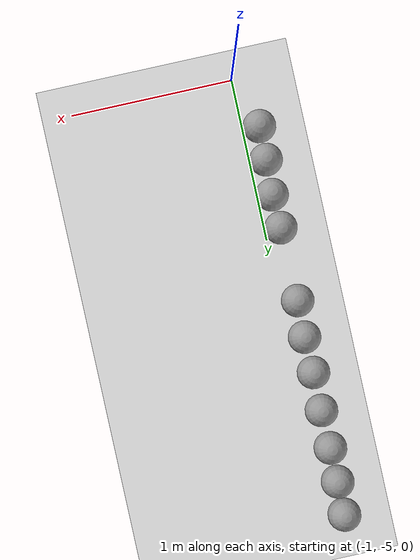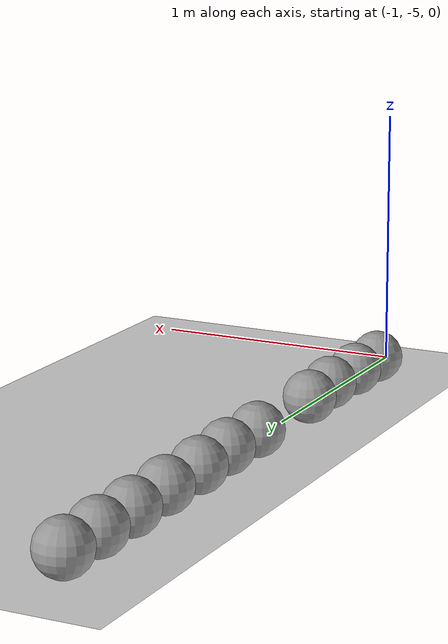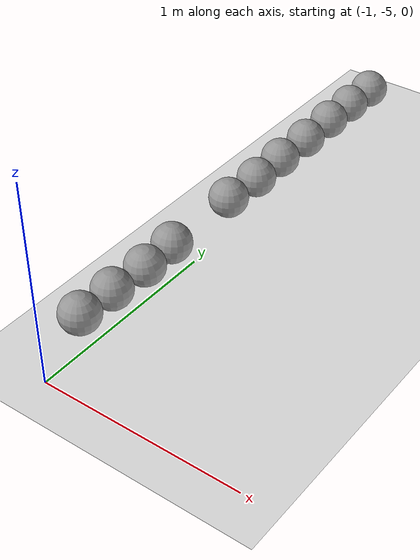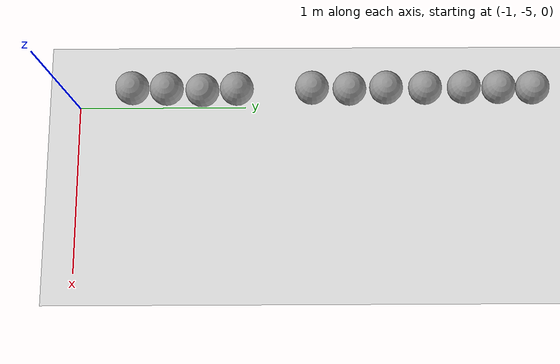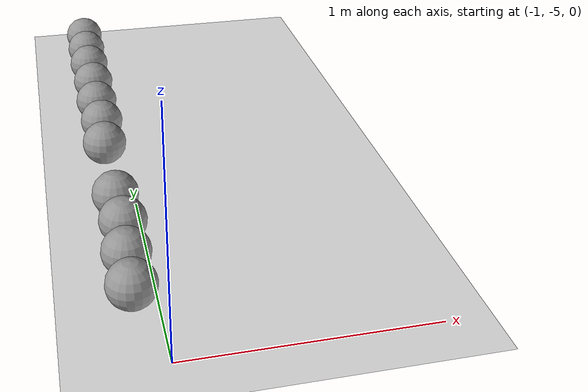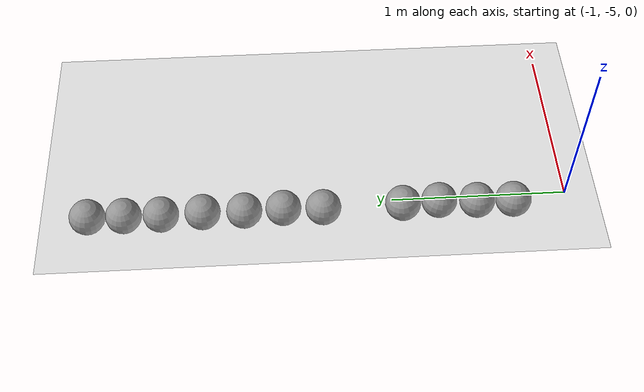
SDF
<sdf version="1.7">
 <world name="default">
  <model name="ground_plane">
   <static>1</static>
   <link name="link">
    <collision name="collision">
     <geometry><plane><normal>0 0 1</normal><size>100 100</size></plane></geometry>
     <surface>
      <contact><collide_bitmask>65535</collide_bitmask></contact>
      <friction><ode><mu>100</mu><mu2>50</mu2></ode></friction>
     </surface>
    </collision>
    <visual name="visual">
     <cast_shadows>0</cast_shadows>
     <geometry><plane><normal>0 0 1</normal><size>100 100</size></plane></geometry>
     <material>
      <script><uri>file://media/materials/scripts/gazebo.material</uri><name>Gazebo/White</name></script>
     </material>
    </visual>
   </link>
  </model>
  <model name="sphere_3">
   <link name="link_0">
    <inertial>
     <mass>1</mass>
     <inertia><ixx>0.1</ixx><ixy>0</ixy><ixz>0</ixz><iyy>0.1</iyy><iyz>0</iyz><izz>0.1</izz></inertia>
    </inertial>
    <visual name="visual">
     <geometry><sphere><radius>0.1</radius></sphere></geometry>
     <material>
      <lighting>1</lighting>
      <script><uri>file://media/materials/scripts/gazebo.material</uri><name>Gazebo/Grey</name></script>
      <shader type="pixel"><normal_map>__default__</normal_map></shader>
      <ambient>0.3 0.3 0.3 1</ambient>
      <diffuse>0.7 0.7 0.7 1</diffuse>
      <specular>0.01 0.01 0.01 1</specular>
      <emissive>0 0 0 1</emissive>
     </material>
    </visual>
    <collision name="collision">
     <geometry><sphere><radius>0.1</radius></sphere></geometry>
     <surface>
      <friction>
       <ode><mu>1</mu><mu2>1</mu2><fdir1>0 0 0</fdir1><slip1>0</slip1><slip2>0</slip2></ode>
       <torsional>
        <coefficient>1</coefficient>
        <patch_radius>0</patch_radius>
        <surface_radius>0</surface_radius>
        <use_patch_radius>1</use_patch_radius>
        <ode><slip>0</slip></ode>
       </torsional>
      </friction>
      <bounce><restitution_coefficient>0</restitution_coefficient><threshold>1e+06</threshold></bounce>
      <contact>
       <collide_without_contact>0</collide_without_contact>
       <collide_without_contact_bitmask>1</collide_without_contact_bitmask>
       <collide_bitmask>1</collide_bitmask>
       <ode>
        <soft_cfm>0</soft_cfm>
        <soft_erp>0.2</soft_erp>
        <kp>1e+13</kp>
        <kd>1</kd>
        <max_vel>0.01</max_vel>
        <min_depth>0</min_depth>
       </ode>
       <bullet>
        <split_impulse>1</split_impulse>
        <split_impulse_penetration_threshold>-0.01</split_impulse_penetration_threshold>
        <soft_cfm>0</soft_cfm>
        <soft_erp>0.2</soft_erp>
        <kp>1e+13</kp>
        <kd>1</kd>
       </bullet>
      </contact>
     </surface>
    </collision>
   </link>
   <static>0</static>
   <pose>-1.09593 -4.67195 0.1 0 -0 0</pose>
  </model>
  <model name="sphere_4">
   <link name="link_0">
    <inertial>
     <mass>1</mass>
     <inertia><ixx>0.1</ixx><ixy>0</ixy><ixz>0</ixz><iyy>0.1</iyy><iyz>0</iyz><izz>0.1</izz></inertia>
    </inertial>
    <visual name="visual">
     <geometry><sphere><radius>0.1</radius></sphere></geometry>
     <material>
      <lighting>1</lighting>
      <script><uri>file://media/materials/scripts/gazebo.material</uri><name>Gazebo/Grey</name></script>
      <shader type="pixel"><normal_map>__default__</normal_map></shader>
      <ambient>0.3 0.3 0.3 1</ambient>
      <diffuse>0.7 0.7 0.7 1</diffuse>
      <specular>0.01 0.01 0.01 1</specular>
      <emissive>0 0 0 1</emissive>
     </material>
    </visual>
    <collision name="collision">
     <geometry><sphere><radius>0.1</radius></sphere></geometry>
     <surface>
      <friction>
       <ode><mu>1</mu><mu2>1</mu2><fdir1>0 0 0</fdir1><slip1>0</slip1><slip2>0</slip2></ode>
       <torsional>
        <coefficient>1</coefficient>
        <patch_radius>0</patch_radius>
        <surface_radius>0</surface_radius>
        <use_patch_radius>1</use_patch_radius>
        <ode><slip>0</slip></ode>
       </torsional>
      </friction>
      <bounce><restitution_coefficient>0</restitution_coefficient><threshold>1e+06</threshold></bounce>
      <contact>
       <collide_without_contact>0</collide_without_contact>
       <collide_without_contact_bitmask>1</collide_without_contact_bitmask>
       <collide_bitmask>1</collide_bitmask>
       <ode>
        <soft_cfm>0</soft_cfm>
        <soft_erp>0.2</soft_erp>
        <kp>1e+13</kp>
        <kd>1</kd>
        <max_vel>0.01</max_vel>
        <min_depth>0</min_depth>
       </ode>
       <bullet>
        <split_impulse>1</split_impulse>
        <split_impulse_penetration_threshold>-0.01</split_impulse_penetration_threshold>
        <soft_cfm>0</soft_cfm>
        <soft_erp>0.2</soft_erp>
        <kp>1e+13</kp>
        <kd>1</kd>
       </bullet>
      </contact>
     </surface>
    </collision>
   </link>
   <static>0</static>
   <pose>-1.0917 -4.46699 0.1 0 -0 0</pose>
  </model>
  <model name="sphere_5">
   <link name="link_0">
    <inertial>
     <mass>1</mass>
     <inertia><ixx>0.1</ixx><ixy>0</ixy><ixz>0</ixz><iyy>0.1</iyy><iyz>0</iyz><izz>0.1</izz></inertia>
    </inertial>
    <visual name="visual">
     <geometry><sphere><radius>0.1</radius></sphere></geometry>
     <material>
      <lighting>1</lighting>
      <script><uri>file://media/materials/scripts/gazebo.material</uri><name>Gazebo/Grey</name></script>
      <shader type="pixel"><normal_map>__default__</normal_map></shader>
      <ambient>0.3 0.3 0.3 1</ambient>
      <diffuse>0.7 0.7 0.7 1</diffuse>
      <specular>0.01 0.01 0.01 1</specular>
      <emissive>0 0 0 1</emissive>
     </material>
    </visual>
    <collision name="collision">
     <geometry><sphere><radius>0.1</radius></sphere></geometry>
     <surface>
      <friction>
       <ode><mu>1</mu><mu2>1</mu2><fdir1>0 0 0</fdir1><slip1>0</slip1><slip2>0</slip2></ode>
       <torsional>
        <coefficient>1</coefficient>
        <patch_radius>0</patch_radius>
        <surface_radius>0</surface_radius>
        <use_patch_radius>1</use_patch_radius>
        <ode><slip>0</slip></ode>
       </torsional>
      </friction>
      <bounce><restitution_coefficient>0</restitution_coefficient><threshold>1e+06</threshold></bounce>
      <contact>
       <collide_without_contact>0</collide_without_contact>
       <collide_without_contact_bitmask>1</collide_without_contact_bitmask>
       <collide_bitmask>1</collide_bitmask>
       <ode>
        <soft_cfm>0</soft_cfm>
        <soft_erp>0.2</soft_erp>
        <kp>1e+13</kp>
        <kd>1</kd>
        <max_vel>0.01</max_vel>
        <min_depth>0</min_depth>
       </ode>
       <bullet>
        <split_impulse>1</split_impulse>
        <split_impulse_penetration_threshold>-0.01</split_impulse_penetration_threshold>
        <soft_cfm>0</soft_cfm>
        <soft_erp>0.2</soft_erp>
        <kp>1e+13</kp>
        <kd>1</kd>
       </bullet>
      </contact>
     </surface>
    </collision>
   </link>
   <static>0</static>
   <pose>-1.08101 -4.25403 0.1 0.127097 0.006179 -0.000169</pose>
  </model>
  <model name="sphere_6">
   <link name="link_0">
    <inertial>
     <mass>1</mass>
     <inertia><ixx>0.1</ixx><ixy>0</ixy><ixz>0</ixz><iyy>0.1</iyy><iyz>0</iyz><izz>0.1</izz></inertia>
    </inertial>
    <visual name="visual">
     <geometry><sphere><radius>0.1</radius></sphere></geometry>
     <material>
      <lighting>1</lighting>
      <script><uri>file://media/materials/scripts/gazebo.material</uri><name>Gazebo/Grey</name></script>
      <shader type="pixel"><normal_map>__default__</normal_map></shader>
      <ambient>0.3 0.3 0.3 1</ambient>
      <diffuse>0.7 0.7 0.7 1</diffuse>
      <specular>0.01 0.01 0.01 1</specular>
      <emissive>0 0 0 1</emissive>
     </material>
    </visual>
    <collision name="collision">
     <geometry><sphere><radius>0.1</radius></sphere></geometry>
     <surface>
      <friction>
       <ode><mu>1</mu><mu2>1</mu2><fdir1>0 0 0</fdir1><slip1>0</slip1><slip2>0</slip2></ode>
       <torsional>
        <coefficient>1</coefficient>
        <patch_radius>0</patch_radius>
        <surface_radius>0</surface_radius>
        <use_patch_radius>1</use_patch_radius>
        <ode><slip>0</slip></ode>
       </torsional>
      </friction>
      <bounce><restitution_coefficient>0</restitution_coefficient><threshold>1e+06</threshold></bounce>
      <contact>
       <collide_without_contact>0</collide_without_contact>
       <collide_without_contact_bitmask>1</collide_without_contact_bitmask>
       <collide_bitmask>1</collide_bitmask>
       <ode>
        <soft_cfm>0</soft_cfm>
        <soft_erp>0.2</soft_erp>
        <kp>1e+13</kp>
        <kd>1</kd>
        <max_vel>0.01</max_vel>
        <min_depth>0</min_depth>
       </ode>
       <bullet>
        <split_impulse>1</split_impulse>
        <split_impulse_penetration_threshold>-0.01</split_impulse_penetration_threshold>
        <soft_cfm>0</soft_cfm>
        <soft_erp>0.2</soft_erp>
        <kp>1e+13</kp>
        <kd>1</kd>
       </bullet>
      </contact>
     </surface>
    </collision>
   </link>
   <static>0</static>
   <pose>-1.08988 -4.04926 0.1 -0.122309 -0.005909 -0.000202</pose>
  </model>
  <model name="sphere_8">
   <link name="link_0">
    <inertial>
     <mass>1</mass>
     <inertia><ixx>0.1</ixx><ixy>0</ixy><ixz>0</ixz><iyy>0.1</iyy><iyz>0</iyz><izz>0.1</izz></inertia>
    </inertial>
    <visual name="visual">
     <geometry><sphere><radius>0.1</radius></sphere></geometry>
     <material>
      <lighting>1</lighting>
      <script><uri>file://media/materials/scripts/gazebo.material</uri><name>Gazebo/Grey</name></script>
      <shader type="pixel"><normal_map>__default__</normal_map></shader>
      <ambient>0.3 0.3 0.3 1</ambient>
      <diffuse>0.7 0.7 0.7 1</diffuse>
      <specular>0.01 0.01 0.01 1</specular>
      <emissive>0 0 0 1</emissive>
     </material>
    </visual>
    <collision name="collision">
     <geometry><sphere><radius>0.1</radius></sphere></geometry>
     <surface>
      <friction>
       <ode><mu>1</mu><mu2>1</mu2><fdir1>0 0 0</fdir1><slip1>0</slip1><slip2>0</slip2></ode>
       <torsional>
        <coefficient>1</coefficient>
        <patch_radius>0</patch_radius>
        <surface_radius>0</surface_radius>
        <use_patch_radius>1</use_patch_radius>
        <ode><slip>0</slip></ode>
       </torsional>
      </friction>
      <bounce><restitution_coefficient>0</restitution_coefficient><threshold>1e+06</threshold></bounce>
      <contact>
       <collide_without_contact>0</collide_without_contact>
       <collide_without_contact_bitmask>1</collide_without_contact_bitmask>
       <collide_bitmask>1</collide_bitmask>
       <ode>
        <soft_cfm>0</soft_cfm>
        <soft_erp>0.2</soft_erp>
        <kp>1e+13</kp>
        <kd>1</kd>
        <max_vel>0.01</max_vel>
        <min_depth>0</min_depth>
       </ode>
       <bullet>
        <split_impulse>1</split_impulse>
        <split_impulse_penetration_threshold>-0.01</split_impulse_penetration_threshold>
        <soft_cfm>0</soft_cfm>
        <soft_erp>0.2</soft_erp>
        <kp>1e+13</kp>
        <kd>1</kd>
       </bullet>
      </contact>
     </surface>
    </collision>
   </link>
   <static>0</static>
   <pose>-1.09424 -3.60094 0.1 0 -0 0</pose>
  </model>
  <model name="sphere_9">
   <link name="link_0">
    <inertial>
     <mass>1</mass>
     <inertia><ixx>0.1</ixx><ixy>0</ixy><ixz>0</ixz><iyy>0.1</iyy><iyz>0</iyz><izz>0.1</izz></inertia>
    </inertial>
    <visual name="visual">
     <geometry><sphere><radius>0.1</radius></sphere></geometry>
     <material>
      <lighting>1</lighting>
      <script><uri>file://media/materials/scripts/gazebo.material</uri><name>Gazebo/Grey</name></script>
      <shader type="pixel"><normal_map>__default__</normal_map></shader>
      <ambient>0.3 0.3 0.3 1</ambient>
      <diffuse>0.7 0.7 0.7 1</diffuse>
      <specular>0.01 0.01 0.01 1</specular>
      <emissive>0 0 0 1</emissive>
     </material>
    </visual>
    <collision name="collision">
     <geometry><sphere><radius>0.1</radius></sphere></geometry>
     <surface>
      <friction>
       <ode><mu>1</mu><mu2>1</mu2><fdir1>0 0 0</fdir1><slip1>0</slip1><slip2>0</slip2></ode>
       <torsional>
        <coefficient>1</coefficient>
        <patch_radius>0</patch_radius>
        <surface_radius>0</surface_radius>
        <use_patch_radius>1</use_patch_radius>
        <ode><slip>0</slip></ode>
       </torsional>
      </friction>
      <bounce><restitution_coefficient>0</restitution_coefficient><threshold>1e+06</threshold></bounce>
      <contact>
       <collide_without_contact>0</collide_without_contact>
       <collide_without_contact_bitmask>1</collide_without_contact_bitmask>
       <collide_bitmask>1</collide_bitmask>
       <ode>
        <soft_cfm>0</soft_cfm>
        <soft_erp>0.2</soft_erp>
        <kp>1e+13</kp>
        <kd>1</kd>
        <max_vel>0.01</max_vel>
        <min_depth>0</min_depth>
       </ode>
       <bullet>
        <split_impulse>1</split_impulse>
        <split_impulse_penetration_threshold>-0.01</split_impulse_penetration_threshold>
        <soft_cfm>0</soft_cfm>
        <soft_erp>0.2</soft_erp>
        <kp>1e+13</kp>
        <kd>1</kd>
       </bullet>
      </contact>
     </surface>
    </collision>
   </link>
   <static>0</static>
   <pose>-1.08701 -3.37767 0.1 0 -0 0</pose>
  </model>
  <model name="sphere_10">
   <link name="link_0">
    <inertial>
     <mass>1</mass>
     <inertia><ixx>0.1</ixx><ixy>0</ixy><ixz>0</ixz><iyy>0.1</iyy><iyz>0</iyz><izz>0.1</izz></inertia>
    </inertial>
    <visual name="visual">
     <geometry><sphere><radius>0.1</radius></sphere></geometry>
     <material>
      <lighting>1</lighting>
      <script><uri>file://media/materials/scripts/gazebo.material</uri><name>Gazebo/Grey</name></script>
      <shader type="pixel"><normal_map>__default__</normal_map></shader>
      <ambient>0.3 0.3 0.3 1</ambient>
      <diffuse>0.7 0.7 0.7 1</diffuse>
      <specular>0.01 0.01 0.01 1</specular>
      <emissive>0 0 0 1</emissive>
     </material>
    </visual>
    <collision name="collision">
     <geometry><sphere><radius>0.1</radius></sphere></geometry>
     <surface>
      <friction>
       <ode><mu>1</mu><mu2>1</mu2><fdir1>0 0 0</fdir1><slip1>0</slip1><slip2>0</slip2></ode>
       <torsional>
        <coefficient>1</coefficient>
        <patch_radius>0</patch_radius>
        <surface_radius>0</surface_radius>
        <use_patch_radius>1</use_patch_radius>
        <ode><slip>0</slip></ode>
       </torsional>
      </friction>
      <bounce><restitution_coefficient>0</restitution_coefficient><threshold>1e+06</threshold></bounce>
      <contact>
       <collide_without_contact>0</collide_without_contact>
       <collide_without_contact_bitmask>1</collide_without_contact_bitmask>
       <collide_bitmask>1</collide_bitmask>
       <ode>
        <soft_cfm>0</soft_cfm>
        <soft_erp>0.2</soft_erp>
        <kp>1e+13</kp>
        <kd>1</kd>
        <max_vel>0.01</max_vel>
        <min_depth>0</min_depth>
       </ode>
       <bullet>
        <split_impulse>1</split_impulse>
        <split_impulse_penetration_threshold>-0.01</split_impulse_penetration_threshold>
        <soft_cfm>0</soft_cfm>
        <soft_erp>0.2</soft_erp>
        <kp>1e+13</kp>
        <kd>1</kd>
       </bullet>
      </contact>
     </surface>
    </collision>
   </link>
   <static>0</static>
   <pose>-1.09342 -3.15905 0.1 0 -0 0</pose>
  </model>
  <model name="sphere_11">
   <link name="link_0">
    <inertial>
     <mass>1</mass>
     <inertia><ixx>0.1</ixx><ixy>0</ixy><ixz>0</ixz><iyy>0.1</iyy><iyz>0</iyz><izz>0.1</izz></inertia>
    </inertial>
    <visual name="visual">
     <geometry><sphere><radius>0.1</radius></sphere></geometry>
     <material>
      <lighting>1</lighting>
      <script><uri>file://media/materials/scripts/gazebo.material</uri><name>Gazebo/Grey</name></script>
      <shader type="pixel"><normal_map>__default__</normal_map></shader>
      <ambient>0.3 0.3 0.3 1</ambient>
      <diffuse>0.7 0.7 0.7 1</diffuse>
      <specular>0.01 0.01 0.01 1</specular>
      <emissive>0 0 0 1</emissive>
     </material>
    </visual>
    <collision name="collision">
     <geometry><sphere><radius>0.1</radius></sphere></geometry>
     <surface>
      <friction>
       <ode><mu>1</mu><mu2>1</mu2><fdir1>0 0 0</fdir1><slip1>0</slip1><slip2>0</slip2></ode>
       <torsional>
        <coefficient>1</coefficient>
        <patch_radius>0</patch_radius>
        <surface_radius>0</surface_radius>
        <use_patch_radius>1</use_patch_radius>
        <ode><slip>0</slip></ode>
       </torsional>
      </friction>
      <bounce><restitution_coefficient>0</restitution_coefficient><threshold>1e+06</threshold></bounce>
      <contact>
       <collide_without_contact>0</collide_without_contact>
       <collide_without_contact_bitmask>1</collide_without_contact_bitmask>
       <collide_bitmask>1</collide_bitmask>
       <ode>
        <soft_cfm>0</soft_cfm>
        <soft_erp>0.2</soft_erp>
        <kp>1e+13</kp>
        <kd>1</kd>
        <max_vel>0.01</max_vel>
        <min_depth>0</min_depth>
       </ode>
       <bullet>
        <split_impulse>1</split_impulse>
        <split_impulse_penetration_threshold>-0.01</split_impulse_penetration_threshold>
        <soft_cfm>0</soft_cfm>
        <soft_erp>0.2</soft_erp>
        <kp>1e+13</kp>
        <kd>1</kd>
       </bullet>
      </contact>
     </surface>
    </collision>
   </link>
   <static>0</static>
   <pose>-1.09082 -2.92679 0.1 0 -0 0</pose>
  </model>
  <model name="sphere_12">
   <link name="link_0">
    <inertial>
     <mass>1</mass>
     <inertia><ixx>0.1</ixx><ixy>0</ixy><ixz>0</ixz><iyy>0.1</iyy><iyz>0</iyz><izz>0.1</izz></inertia>
    </inertial>
    <visual name="visual">
     <geometry><sphere><radius>0.1</radius></sphere></geometry>
     <material>
      <lighting>1</lighting>
      <script><uri>file://media/materials/scripts/gazebo.material</uri><name>Gazebo/Grey</name></script>
      <shader type="pixel"><normal_map>__default__</normal_map></shader>
      <ambient>0.3 0.3 0.3 1</ambient>
      <diffuse>0.7 0.7 0.7 1</diffuse>
      <specular>0.01 0.01 0.01 1</specular>
      <emissive>0 0 0 1</emissive>
     </material>
    </visual>
    <collision name="collision">
     <geometry><sphere><radius>0.1</radius></sphere></geometry>
     <surface>
      <friction>
       <ode><mu>1</mu><mu2>1</mu2><fdir1>0 0 0</fdir1><slip1>0</slip1><slip2>0</slip2></ode>
       <torsional>
        <coefficient>1</coefficient>
        <patch_radius>0</patch_radius>
        <surface_radius>0</surface_radius>
        <use_patch_radius>1</use_patch_radius>
        <ode><slip>0</slip></ode>
       </torsional>
      </friction>
      <bounce><restitution_coefficient>0</restitution_coefficient><threshold>1e+06</threshold></bounce>
      <contact>
       <collide_without_contact>0</collide_without_contact>
       <collide_without_contact_bitmask>1</collide_without_contact_bitmask>
       <collide_bitmask>1</collide_bitmask>
       <ode>
        <soft_cfm>0</soft_cfm>
        <soft_erp>0.2</soft_erp>
        <kp>1e+13</kp>
        <kd>1</kd>
        <max_vel>0.01</max_vel>
        <min_depth>0</min_depth>
       </ode>
       <bullet>
        <split_impulse>1</split_impulse>
        <split_impulse_penetration_threshold>-0.01</split_impulse_penetration_threshold>
        <soft_cfm>0</soft_cfm>
        <soft_erp>0.2</soft_erp>
        <kp>1e+13</kp>
        <kd>1</kd>
       </bullet>
      </contact>
     </surface>
    </collision>
   </link>
   <static>0</static>
   <pose>-1.09448 -2.6955 0.1 0 -0 0</pose>
  </model>
  <model name="sphere_13">
   <link name="link_0">
    <inertial>
     <mass>1</mass>
     <inertia><ixx>0.1</ixx><ixy>0</ixy><ixz>0</ixz><iyy>0.1</iyy><iyz>0</iyz><izz>0.1</izz></inertia>
    </inertial>
    <visual name="visual">
     <geometry><sphere><radius>0.1</radius></sphere></geometry>
     <material>
      <lighting>1</lighting>
      <script><uri>file://media/materials/scripts/gazebo.material</uri><name>Gazebo/Grey</name></script>
      <shader type="pixel"><normal_map>__default__</normal_map></shader>
      <ambient>0.3 0.3 0.3 1</ambient>
      <diffuse>0.7 0.7 0.7 1</diffuse>
      <specular>0.01 0.01 0.01 1</specular>
      <emissive>0 0 0 1</emissive>
     </material>
    </visual>
    <collision name="collision">
     <geometry><sphere><radius>0.1</radius></sphere></geometry>
     <surface>
      <friction>
       <ode><mu>1</mu><mu2>1</mu2><fdir1>0 0 0</fdir1><slip1>0</slip1><slip2>0</slip2></ode>
       <torsional>
        <coefficient>1</coefficient>
        <patch_radius>0</patch_radius>
        <surface_radius>0</surface_radius>
        <use_patch_radius>1</use_patch_radius>
        <ode><slip>0</slip></ode>
       </torsional>
      </friction>
      <bounce><restitution_coefficient>0</restitution_coefficient><threshold>1e+06</threshold></bounce>
      <contact>
       <collide_without_contact>0</collide_without_contact>
       <collide_without_contact_bitmask>1</collide_without_contact_bitmask>
       <collide_bitmask>1</collide_bitmask>
       <ode>
        <soft_cfm>0</soft_cfm>
        <soft_erp>0.2</soft_erp>
        <kp>1e+13</kp>
        <kd>1</kd>
        <max_vel>0.01</max_vel>
        <min_depth>0</min_depth>
       </ode>
       <bullet>
        <split_impulse>1</split_impulse>
        <split_impulse_penetration_threshold>-0.01</split_impulse_penetration_threshold>
        <soft_cfm>0</soft_cfm>
        <soft_erp>0.2</soft_erp>
        <kp>1e+13</kp>
        <kd>1</kd>
       </bullet>
      </contact>
     </surface>
    </collision>
   </link>
   <static>0</static>
   <pose>-1.09339 -2.48857 0.1 0 -0 0</pose>
  </model>
  <model name="sphere_14">
   <link name="link_0">
    <inertial>
     <mass>1</mass>
     <inertia><ixx>0.1</ixx><ixy>0</ixy><ixz>0</ixz><iyy>0.1</iyy><iyz>0</iyz><izz>0.1</izz></inertia>
    </inertial>
    <visual name="visual">
     <geometry><sphere><radius>0.1</radius></sphere></geometry>
     <material>
      <lighting>1</lighting>
      <script><uri>file://media/materials/scripts/gazebo.material</uri><name>Gazebo/Grey</name></script>
      <shader type="pixel"><normal_map>__default__</normal_map></shader>
      <ambient>0.3 0.3 0.3 1</ambient>
      <diffuse>0.7 0.7 0.7 1</diffuse>
      <specular>0.01 0.01 0.01 1</specular>
      <emissive>0 0 0 1</emissive>
     </material>
    </visual>
    <collision name="collision">
     <geometry><sphere><radius>0.1</radius></sphere></geometry>
     <surface>
      <friction>
       <ode><mu>1</mu><mu2>1</mu2><fdir1>0 0 0</fdir1><slip1>0</slip1><slip2>0</slip2></ode>
       <torsional>
        <coefficient>1</coefficient>
        <patch_radius>0</patch_radius>
        <surface_radius>0</surface_radius>
        <use_patch_radius>1</use_patch_radius>
        <ode><slip>0</slip></ode>
       </torsional>
      </friction>
      <bounce><restitution_coefficient>0</restitution_coefficient><threshold>1e+06</threshold></bounce>
      <contact>
       <collide_without_contact>0</collide_without_contact>
       <collide_without_contact_bitmask>1</collide_without_contact_bitmask>
       <collide_bitmask>1</collide_bitmask>
       <ode>
        <soft_cfm>0</soft_cfm>
        <soft_erp>0.2</soft_erp>
        <kp>1e+13</kp>
        <kd>1</kd>
        <max_vel>0.01</max_vel>
        <min_depth>0</min_depth>
       </ode>
       <bullet>
        <split_impulse>1</split_impulse>
        <split_impulse_penetration_threshold>-0.01</split_impulse_penetration_threshold>
        <soft_cfm>0</soft_cfm>
        <soft_erp>0.2</soft_erp>
        <kp>1e+13</kp>
        <kd>1</kd>
       </bullet>
      </contact>
     </surface>
    </collision>
   </link>
   <static>0</static>
   <pose>-1.09015 -2.2869 0.1 0.054807 -0.004576 0.000566</pose>
  </model>
 </world>
</sdf>
